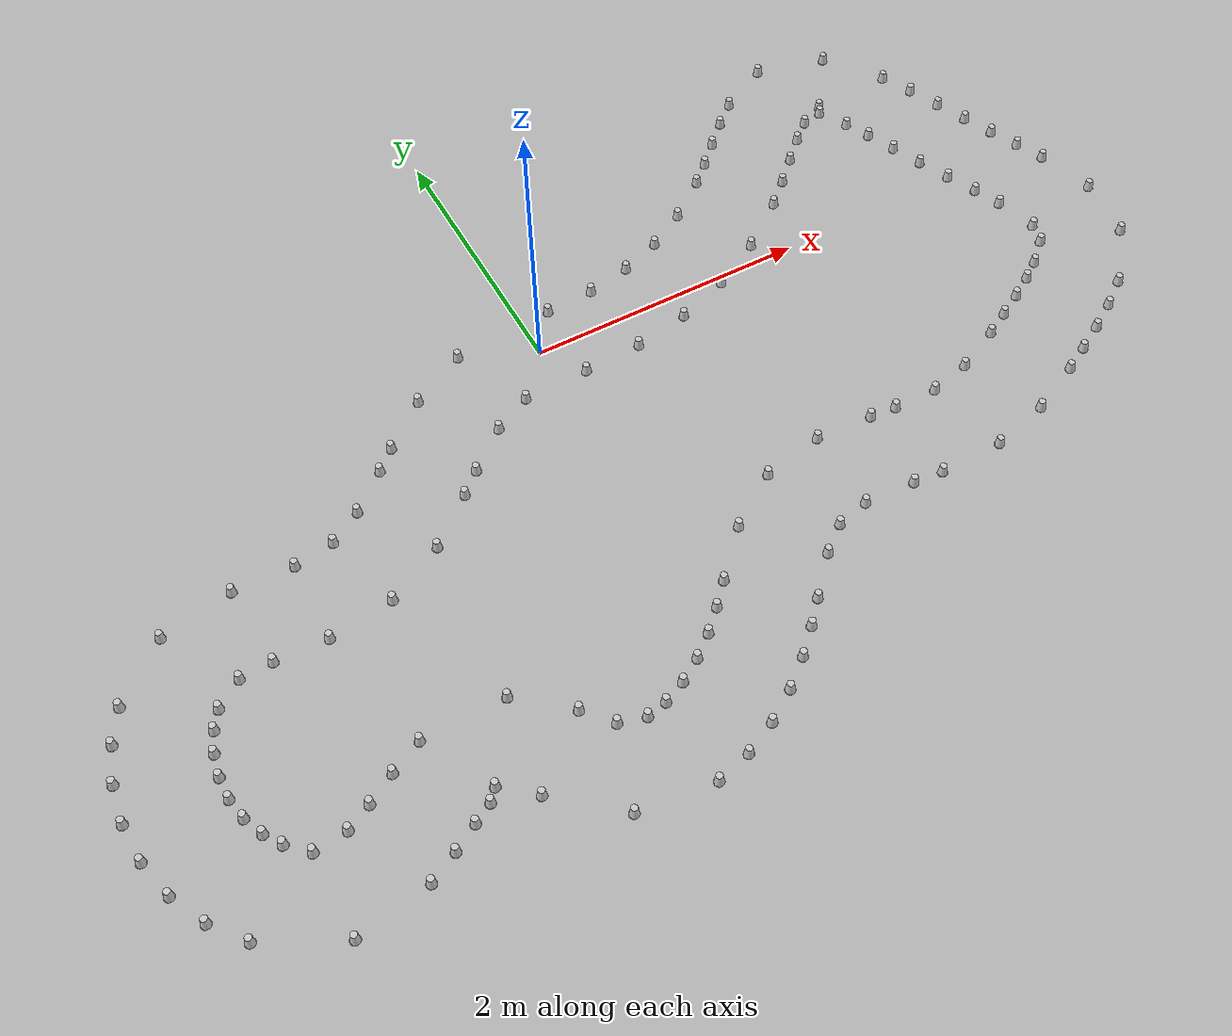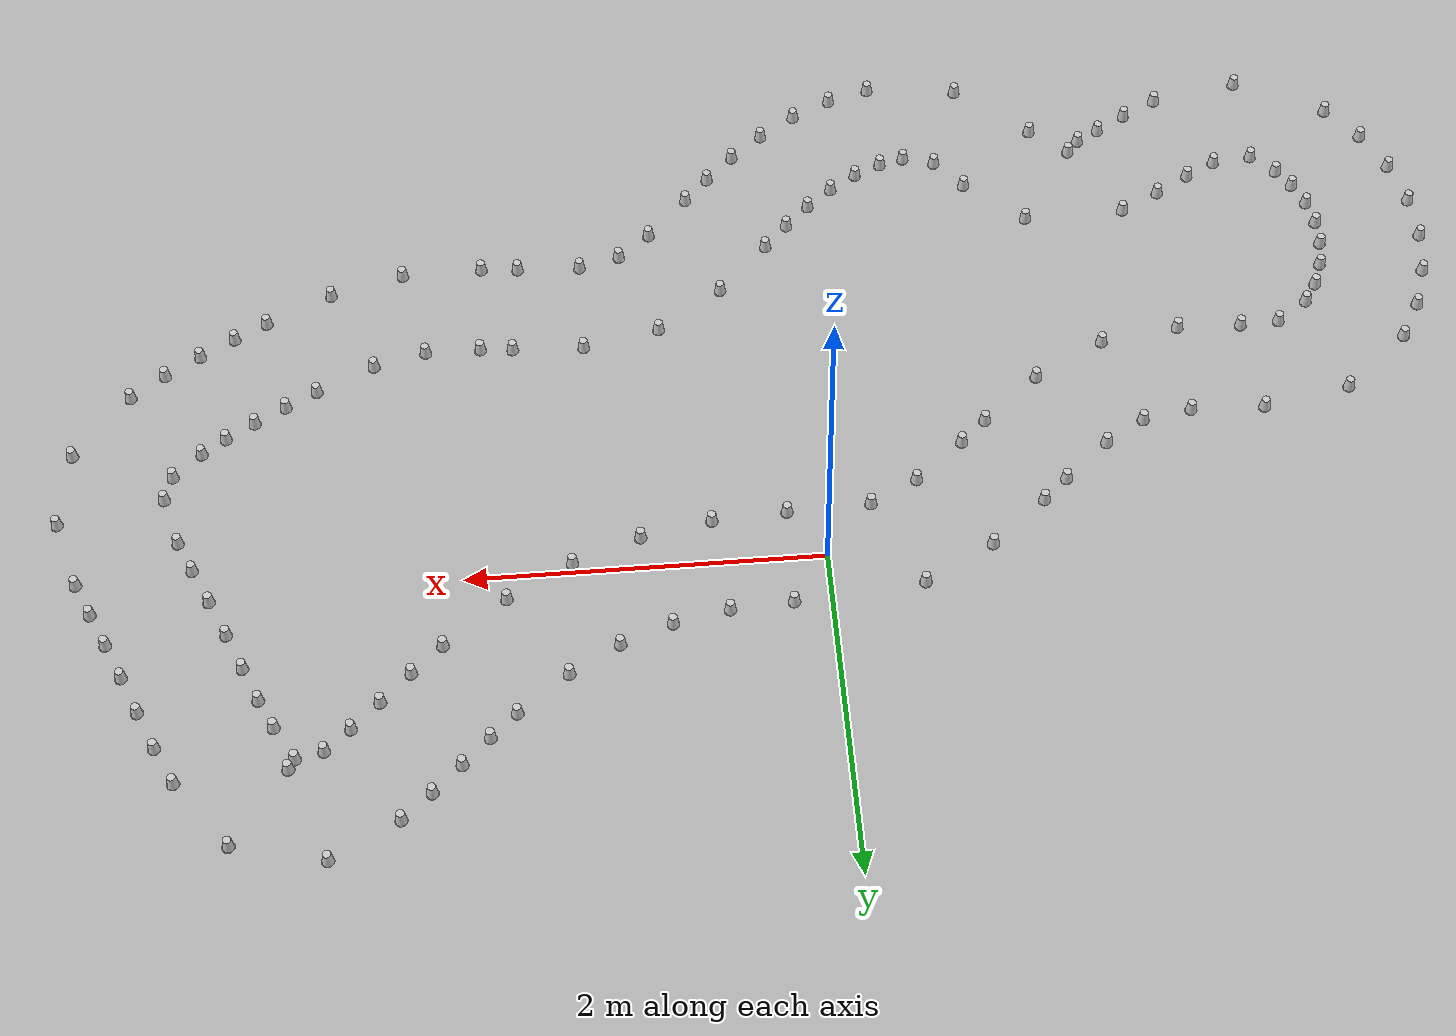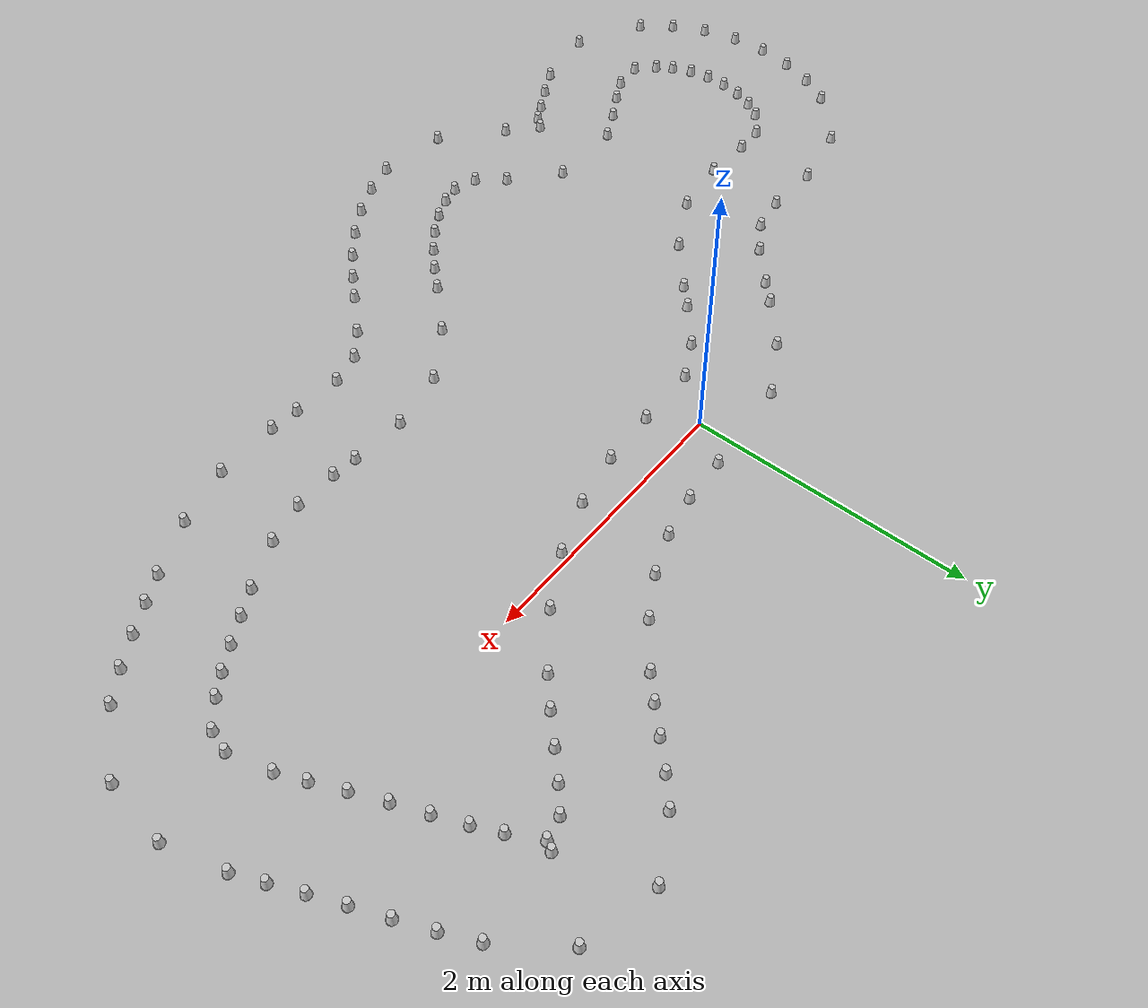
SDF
<?xml version='1.0' encoding='UTF-8'?>
<sdf version="1.4">
  <model name="some track">
    <include>
      <uri>model://cone_yellow</uri>
      <pose>0.19962206085921083 -0.3041618309189169 0 0 0 0</pose>
      <name>cone_right_0</name>
    </include>
    <include>
      <uri>model://cone_yellow</uri>
      <pose>0.6200090229429329 -0.27854277649779247 0 0 0 0</pose>
      <name>cone_right_1</name>
    </include>
    <include>
      <uri>model://cone_yellow</uri>
      <pose>1.0206518452992788 -0.1988406735972089 0 0 0 0</pose>
      <name>cone_right_2</name>
    </include>
    <include>
      <uri>model://cone_yellow</uri>
      <pose>1.404292392194105 -0.05758137551487469 0 0 0 0</pose>
      <name>cone_right_3</name>
    </include>
    <include>
      <uri>model://cone_yellow</uri>
      <pose>1.7717779220739311 0.14948636563770917 0 0 0 0</pose>
      <name>cone_right_4</name>
    </include>
    <include>
      <uri>model://cone_yellow</uri>
      <pose>2.125866095009302 0.4236454003231837 0 0 0 0</pose>
      <name>cone_right_5</name>
    </include>
    <include>
      <uri>model://cone_yellow</uri>
      <pose>2.299613305403828 0.5857872092862633 0 0 0 0</pose>
      <name>cone_right_6</name>
    </include>
    <include>
      <uri>model://cone_yellow</uri>
      <pose>2.467379689315236 0.7536571095711145 0 0 0 0</pose>
      <name>cone_right_7</name>
    </include>
    <include>
      <uri>model://cone_yellow</uri>
      <pose>2.6240885991860736 0.908438684528899 0 0 0 0</pose>
      <name>cone_right_8</name>
    </include>
    <include>
      <uri>model://cone_yellow</uri>
      <pose>2.7659605211249962 1.0338483383934316 0 0 0 0</pose>
      <name>cone_right_9</name>
    </include>
    <include>
      <uri>model://cone_yellow</uri>
      <pose>2.9532027202870665 1.1275255923315348 0 0 0 0</pose>
      <name>cone_right_10</name>
    </include>
    <include>
      <uri>model://cone_yellow</uri>
      <pose>2.91959622642824 1.0688971244918886 0 0 0 0</pose>
      <name>cone_right_11</name>
    </include>
    <include>
      <uri>model://cone_yellow</uri>
      <pose>3.0326613428856937 0.865136789924208 0 0 0 0</pose>
      <name>cone_right_12</name>
    </include>
    <include>
      <uri>model://cone_yellow</uri>
      <pose>3.115070080154632 0.6867030374291742 0 0 0 0</pose>
      <name>cone_right_13</name>
    </include>
    <include>
      <uri>model://cone_yellow</uri>
      <pose>3.201932326986126 0.4791590501613195 0 0 0 0</pose>
      <name>cone_right_14</name>
    </include>
    <include>
      <uri>model://cone_yellow</uri>
      <pose>3.2926235505993184 0.25676284770154334 0 0 0 0</pose>
      <name>cone_right_15</name>
    </include>
    <include>
      <uri>model://cone_yellow</uri>
      <pose>3.3885584741661523 0.03184577772917119 0 0 0 0</pose>
      <name>cone_right_16</name>
    </include>
    <include>
      <uri>model://cone_yellow</uri>
      <pose>3.484494814114673 -0.18213174059899434 0 0 0 0</pose>
      <name>cone_right_17</name>
    </include>
    <include>
      <uri>model://cone_yellow</uri>
      <pose>3.5664837094719246 -0.37417762074902217 0 0 0 0</pose>
      <name>cone_right_18</name>
    </include>
    <include>
      <uri>model://cone_yellow</uri>
      <pose>3.649243228693374 -0.6754676312972778 0 0 0 0</pose>
      <name>cone_right_19</name>
    </include>
    <include>
      <uri>model://cone_yellow</uri>
      <pose>3.6050656429598162 -0.8296583491311936 0 0 0 0</pose>
      <name>cone_right_20</name>
    </include>
    <include>
      <uri>model://cone_yellow</uri>
      <pose>3.447709122960843 -0.9759523471775199 0 0 0 0</pose>
      <name>cone_right_21</name>
    </include>
    <include>
      <uri>model://cone_yellow</uri>
      <pose>3.3127441245366622 -1.0722286106934011 0 0 0 0</pose>
      <name>cone_right_22</name>
    </include>
    <include>
      <uri>model://cone_yellow</uri>
      <pose>3.151896586086034 -1.171700635666032 0 0 0 0</pose>
      <name>cone_right_23</name>
    </include>
    <include>
      <uri>model://cone_yellow</uri>
      <pose>2.977451010657239 -1.2708236181692982 0 0 0 0</pose>
      <name>cone_right_24</name>
    </include>
    <include>
      <uri>model://cone_yellow</uri>
      <pose>2.80093974365166 -1.3677215907475821 0 0 0 0</pose>
      <name>cone_right_25</name>
    </include>
    <include>
      <uri>model://cone_yellow</uri>
      <pose>2.473956458625086 -1.523733351454825 0 0 0 0</pose>
      <name>cone_right_26</name>
    </include>
    <include>
      <uri>model://cone_yellow</uri>
      <pose>2.1761093899109754 -1.6015142822846629 0 0 0 0</pose>
      <name>cone_right_27</name>
    </include>
    <include>
      <uri>model://cone_yellow</uri>
      <pose>1.8604995631559766 -1.5998649273433292 0 0 0 0</pose>
      <name>cone_right_28</name>
    </include>
    <include>
      <uri>model://cone_yellow</uri>
      <pose>1.6741704545196308 -1.5837453469236658 0 0 0 0</pose>
      <name>cone_right_29</name>
    </include>
    <include>
      <uri>model://cone_yellow</uri>
      <pose>1.265228708679485 -1.565868883334609 0 0 0 0</pose>
      <name>cone_right_30</name>
    </include>
    <include>
      <uri>model://cone_yellow</uri>
      <pose>0.825015792186231 -1.66188428336761 0 0 0 0</pose>
      <name>cone_right_31</name>
    </include>
    <include>
      <uri>model://cone_yellow</uri>
      <pose>0.4481251583171977 -1.9246928211266574 0 0 0 0</pose>
      <name>cone_right_32</name>
    </include>
    <include>
      <uri>model://cone_yellow</uri>
      <pose>0.1563770316512327 -2.236118173638613 0 0 0 0</pose>
      <name>cone_right_33</name>
    </include>
    <include>
      <uri>model://cone_yellow</uri>
      <pose>0.01882752071973351 -2.3870262368217747 0 0 0 0</pose>
      <name>cone_right_34</name>
    </include>
    <include>
      <uri>model://cone_yellow</uri>
      <pose>-0.1222097942212724 -2.5265050943960197 0 0 0 0</pose>
      <name>cone_right_35</name>
    </include>
    <include>
      <uri>model://cone_yellow</uri>
      <pose>-0.2714787259558749 -2.6492600757413785 0 0 0 0</pose>
      <name>cone_right_36</name>
    </include>
    <include>
      <uri>model://cone_yellow</uri>
      <pose>-0.42934755258622814 -2.7509336191828746 0 0 0 0</pose>
      <name>cone_right_37</name>
    </include>
    <include>
      <uri>model://cone_yellow</uri>
      <pose>-0.5872348034616063 -2.8234261508445146 0 0 0 0</pose>
      <name>cone_right_38</name>
    </include>
    <include>
      <uri>model://cone_yellow</uri>
      <pose>-0.7305657049840814 -2.857485580148417 0 0 0 0</pose>
      <name>cone_right_39</name>
    </include>
    <include>
      <uri>model://cone_yellow</uri>
      <pose>-0.9132384652760475 -2.807593690943424 0 0 0 0</pose>
      <name>cone_right_40</name>
    </include>
    <include>
      <uri>model://cone_yellow</uri>
      <pose>-1.0710930085902566 -2.616597340263576 0 0 0 0</pose>
      <name>cone_right_41</name>
    </include>
    <include>
      <uri>model://cone_yellow</uri>
      <pose>-1.4067272672509743 -2.3269832525353964 0 0 0 0</pose>
      <name>cone_right_42</name>
    </include>
    <include>
      <uri>model://cone_yellow</uri>
      <pose>-1.9933716305857154 -2.3408570770696406 0 0 0 0</pose>
      <name>cone_right_43</name>
    </include>
    <include>
      <uri>model://cone_yellow</uri>
      <pose>-2.22199012190233 -2.458622230816267 0 0 0 0</pose>
      <name>cone_right_44</name>
    </include>
    <include>
      <uri>model://cone_yellow</uri>
      <pose>-2.421279251834865 -2.577079736622715 0 0 0 0</pose>
      <name>cone_right_45</name>
    </include>
    <include>
      <uri>model://cone_yellow</uri>
      <pose>-2.5976926739517814 -2.6697409680289415 0 0 0 0</pose>
      <name>cone_right_46</name>
    </include>
    <include>
      <uri>model://cone_yellow</uri>
      <pose>-2.8285873120383895 -2.6974644688588048 0 0 0 0</pose>
      <name>cone_right_47</name>
    </include>
    <include>
      <uri>model://cone_yellow</uri>
      <pose>-2.9602386706120285 -2.569165151742825 0 0 0 0</pose>
      <name>cone_right_48</name>
    </include>
    <include>
      <uri>model://cone_yellow</uri>
      <pose>-3.036192227682637 -2.4507075293365057 0 0 0 0</pose>
      <name>cone_right_49</name>
    </include>
    <include>
      <uri>model://cone_yellow</uri>
      <pose>-3.094690088021542 -2.3046496447589897 0 0 0 0</pose>
      <name>cone_right_50</name>
    </include>
    <include>
      <uri>model://cone_yellow</uri>
      <pose>-3.12288395896249 -2.1475627161090998 0 0 0 0</pose>
      <name>cone_right_51</name>
    </include>
    <include>
      <uri>model://cone_yellow</uri>
      <pose>-3.1206099568197705 -1.9861369180172566 0 0 0 0</pose>
      <name>cone_right_52</name>
    </include>
    <include>
      <uri>model://cone_yellow</uri>
      <pose>-3.0898115986443995 -1.826182903191358 0 0 0 0</pose>
      <name>cone_right_53</name>
    </include>
    <include>
      <uri>model://cone_yellow</uri>
      <pose>-3.0328466157937344 -1.679039607722306 0 0 0 0</pose>
      <name>cone_right_54</name>
    </include>
    <include>
      <uri>model://cone_yellow</uri>
      <pose>-2.9547086901494453 -1.5564997714213364 0 0 0 0</pose>
      <name>cone_right_55</name>
    </include>
    <include>
      <uri>model://cone_yellow</uri>
      <pose>-2.769377282430569 -1.4232101473483936 0 0 0 0</pose>
      <name>cone_right_56</name>
    </include>
    <include>
      <uri>model://cone_yellow</uri>
      <pose>-2.543809231242034 -1.4097226109358214 0 0 0 0</pose>
      <name>cone_right_57</name>
    </include>
    <include>
      <uri>model://cone_yellow</uri>
      <pose>-2.1755961976269544 -1.423413972976139 0 0 0 0</pose>
      <name>cone_right_58</name>
    </include>
    <include>
      <uri>model://cone_yellow</uri>
      <pose>-1.7212704380437926 -1.354918258626261 0 0 0 0</pose>
      <name>cone_right_59</name>
    </include>
    <include>
      <uri>model://cone_yellow</uri>
      <pose>-1.3080357896533428 -1.1292343596531769 0 0 0 0</pose>
      <name>cone_right_60</name>
    </include>
    <include>
      <uri>model://cone_yellow</uri>
      <pose>-0.9764288245516533 -0.8443531879658277 0 0 0 0</pose>
      <name>cone_right_61</name>
    </include>
    <include>
      <uri>model://cone_yellow</uri>
      <pose>-0.8272206069408271 -0.7039510204067285 0 0 0 0</pose>
      <name>cone_right_62</name>
    </include>
    <include>
      <uri>model://cone_yellow</uri>
      <pose>-0.543617809400371 -0.4644914238718153 0 0 0 0</pose>
      <name>cone_right_63</name>
    </include>
    <include>
      <uri>model://cone_yellow</uri>
      <pose>-0.27134453687605875 -0.32196464870410335 0 0 0 0</pose>
      <name>cone_right_64</name>
    </include>
    <include>
      <uri>model://cone_blue</uri>
      <pose>0.2119385571326803 0.29571174236094144 0 0 0 0</pose>
      <name>cone_left_0</name>
    </include>
    <include>
      <uri>model://cone_blue</uri>
      <pose>0.5635531791637727 0.31879526657596247 0 0 0 0</pose>
      <name>cone_left_1</name>
    </include>
    <include>
      <uri>model://cone_blue</uri>
      <pose>0.8793764025764245 0.3842898857833311 0 0 0 0</pose>
      <name>cone_left_2</name>
    </include>
    <include>
      <uri>model://cone_blue</uri>
      <pose>1.171815160080151 0.4955500162435707 0 0 0 0</pose>
      <name>cone_left_3</name>
    </include>
    <include>
      <uri>model://cone_blue</uri>
      <pose>1.455170990203801 0.659152973030996 0 0 0 0</pose>
      <name>cone_left_4</name>
    </include>
    <include>
      <uri>model://cone_blue</uri>
      <pose>1.7418350298522016 0.8846444686457813 0 0 0 0</pose>
      <name>cone_left_5</name>
    </include>
    <include>
      <uri>model://cone_blue</uri>
      <pose>1.8893076703586218 1.0235648764303857 0 0 0 0</pose>
      <name>cone_left_6</name>
    </include>
    <include>
      <uri>model://cone_blue</uri>
      <pose>2.0426859710635616 1.1774910931986278 0 0 0 0</pose>
      <name>cone_left_7</name>
    </include>
    <include>
      <uri>model://cone_blue</uri>
      <pose>2.2024427918345415 1.3353049553244192 0 0 0 0</pose>
      <name>cone_left_8</name>
    </include>
    <include>
      <uri>model://cone_blue</uri>
      <pose>2.3675766690080007 1.4825022209938428 0 0 0 0</pose>
      <name>cone_left_9</name>
    </include>
    <include>
      <uri>model://cone_blue</uri>
      <pose>2.746842363262733 1.6909219031543778 0 0 0 0</pose>
      <name>cone_left_10</name>
    </include>
    <include>
      <uri>model://cone_blue</uri>
      <pose>3.2589279987083346 1.5637243148535842 0 0 0 0</pose>
      <name>cone_left_11</name>
    </include>
    <include>
      <uri>model://cone_blue</uri>
      <pose>3.552888525136892 1.1640743734545804 0 0 0 0</pose>
      <name>cone_left_12</name>
    </include>
    <include>
      <uri>model://cone_blue</uri>
      <pose>3.658434378765858 0.9411735445507864 0 0 0 0</pose>
      <name>cone_left_13</name>
    </include>
    <include>
      <uri>model://cone_blue</uri>
      <pose>3.755158856883274 0.7114097909953587 0 0 0 0</pose>
      <name>cone_left_14</name>
    </include>
    <include>
      <uri>model://cone_blue</uri>
      <pose>3.848189708080809 0.4833599453467945 0 0 0 0</pose>
      <name>cone_left_15</name>
    </include>
    <include>
      <uri>model://cone_blue</uri>
      <pose>3.940414427687979 0.2673346449023687 0 0 0 0</pose>
      <name>cone_left_16</name>
    </include>
    <include>
      <uri>model://cone_blue</uri>
      <pose>4.031932736817092 0.06345270676536943 0 0 0 0</pose>
      <name>cone_left_17</name>
    </include>
    <include>
      <uri>model://cone_blue</uri>
      <pose>4.118244818814677 -0.1384666150304629 0 0 0 0</pose>
      <name>cone_left_18</name>
    </include>
    <include>
      <uri>model://cone_blue</uri>
      <pose>4.2368242535318545 -0.5540240672448311 0 0 0 0</pose>
      <name>cone_left_19</name>
    </include>
    <include>
      <uri>model://cone_blue</uri>
      <pose>4.173081461792759 -1.0229406027282089 0 0 0 0</pose>
      <name>cone_left_20</name>
    </include>
    <include>
      <uri>model://cone_blue</uri>
      <pose>3.85962542199581 -1.4122148399377104 0 0 0 0</pose>
      <name>cone_left_21</name>
    </include>
    <include>
      <uri>model://cone_blue</uri>
      <pose>3.6678628450803563 -1.5558510815520346 0 0 0 0</pose>
      <name>cone_left_22</name>
    </include>
    <include>
      <uri>model://cone_blue</uri>
      <pose>3.4697547560689554 -1.6805878370919556 0 0 0 0</pose>
      <name>cone_left_23</name>
    </include>
    <include>
      <uri>model://cone_blue</uri>
      <pose>3.274506260542366 -1.7921279232691936 0 0 0 0</pose>
      <name>cone_left_24</name>
    </include>
    <include>
      <uri>model://cone_blue</uri>
      <pose>3.0897684416768127 -1.8936284106283428 0 0 0 0</pose>
      <name>cone_left_25</name>
    </include>
    <include>
      <uri>model://cone_blue</uri>
      <pose>2.716661776804831 -2.07245379806427 0 0 0 0</pose>
      <name>cone_left_26</name>
    </include>
    <include>
      <uri>model://cone_blue</uri>
      <pose>2.2976563774270278 -2.1890739216624646 0 0 0 0</pose>
      <name>cone_left_27</name>
    </include>
    <include>
      <uri>model://cone_blue</uri>
      <pose>1.8366134567505863 -2.1993892837466285 0 0 0 0</pose>
      <name>cone_left_28</name>
    </include>
    <include>
      <uri>model://cone_blue</uri>
      <pose>1.623421606581663 -2.1815952899971505 0 0 0 0</pose>
      <name>cone_left_29</name>
    </include>
    <include>
      <uri>model://cone_blue</uri>
      <pose>1.2593300398399454 -2.1658398873889064 0 0 0 0</pose>
      <name>cone_left_30</name>
    </include>
    <include>
      <uri>model://cone_blue</uri>
      <pose>1.0247558813416726 -2.227661533514853 0 0 0 0</pose>
      <name>cone_left_31</name>
    </include>
    <include>
      <uri>model://cone_blue</uri>
      <pose>0.839767548045568 -2.3792434107950147 0 0 0 0</pose>
      <name>cone_left_32</name>
    </include>
    <include>
      <uri>model://cone_blue</uri>
      <pose>0.6033623641196662 -2.6363732330171095 0 0 0 0</pose>
      <name>cone_left_33</name>
    </include>
    <include>
      <uri>model://cone_blue</uri>
      <pose>0.4622869442874933 -2.791184299526146 0 0 0 0</pose>
      <name>cone_left_34</name>
    </include>
    <include>
      <uri>model://cone_blue</uri>
      <pose>0.3004962665888844 -2.952321470495342 0 0 0 0</pose>
      <name>cone_left_35</name>
    </include>
    <include>
      <uri>model://cone_blue</uri>
      <pose>0.11237520546319257 -3.1104066460789728 0 0 0 0</pose>
      <name>cone_left_36</name>
    </include>
    <include>
      <uri>model://cone_blue</uri>
      <pose>-0.09943858362701075 -3.2520923487289792 0 0 0 0</pose>
      <name>cone_left_37</name>
    </include>
    <include>
      <uri>model://cone_blue</uri>
      <pose>-0.32823543779568554 -3.364646372736353 0 0 0 0</pose>
      <name>cone_left_38</name>
    </include>
    <include>
      <uri>model://cone_blue</uri>
      <pose>-0.572701065462406 -3.4363454557562285 0 0 0 0</pose>
      <name>cone_left_39</name>
    </include>
    <include>
      <uri>model://cone_blue</uri>
      <pose>-1.1054023752708437 -3.375988827882079 0 0 0 0</pose>
      <name>cone_left_40</name>
    </include>
    <include>
      <uri>model://cone_blue</uri>
      <pose>-1.5211045363714362 -3.0134469652653495 0 0 0 0</pose>
      <name>cone_left_41</name>
    </include>
    <include>
      <uri>model://cone_blue</uri>
      <pose>-1.7344850687489024 -2.8295514802987967 0 0 0 0</pose>
      <name>cone_left_42</name>
    </include>
    <include>
      <uri>model://cone_blue</uri>
      <pose>-1.8040764275635226 -2.910214017936077 0 0 0 0</pose>
      <name>cone_left_43</name>
    </include>
    <include>
      <uri>model://cone_blue</uri>
      <pose>-1.9381025868812147 -2.9872126842484445 0 0 0 0</pose>
      <name>cone_left_44</name>
    </include>
    <include>
      <uri>model://cone_blue</uri>
      <pose>-2.1140408486425004 -3.092448113227068 0 0 0 0</pose>
      <name>cone_left_45</name>
    </include>
    <include>
      <uri>model://cone_blue</uri>
      <pose>-2.3176112202937458 -3.200357947889935 0 0 0 0</pose>
      <name>cone_left_46</name>
    </include>
    <include>
      <uri>model://cone_blue</uri>
      <pose>-2.8295202432964794 -3.297463743557756 0 0 0 0</pose>
      <name>cone_left_47</name>
    </include>
    <include>
      <uri>model://cone_blue</uri>
      <pose>-3.3459261545940233 -3.0287792993706346 0 0 0 0</pose>
      <name>cone_left_48</name>
    </include>
    <include>
      <uri>model://cone_blue</uri>
      <pose>-3.5203898814690504 -2.805041597791308 0 0 0 0</pose>
      <name>cone_left_49</name>
    </include>
    <include>
      <uri>model://cone_blue</uri>
      <pose>-3.6419212284973224 -2.550694516466523 0 0 0 0</pose>
      <name>cone_left_50</name>
    </include>
    <include>
      <uri>model://cone_blue</uri>
      <pose>-3.7087972775251346 -2.2768127959191693 0 0 0 0</pose>
      <name>cone_left_51</name>
    </include>
    <include>
      <uri>model://cone_blue</uri>
      <pose>-3.7204725846292575 -1.9989754443149619 0 0 0 0</pose>
      <name>cone_left_52</name>
    </include>
    <include>
      <uri>model://cone_blue</uri>
      <pose>-3.6821483813527878 -1.7305945364793152 0 0 0 0</pose>
      <name>cone_left_53</name>
    </include>
    <include>
      <uri>model://cone_blue</uri>
      <pose>-3.5987013348758765 -1.4795190902498654 0 0 0 0</pose>
      <name>cone_left_54</name>
    </include>
    <include>
      <uri>model://cone_blue</uri>
      <pose>-3.4723721618543513 -1.2531443197438967 0 0 0 0</pose>
      <name>cone_left_55</name>
    </include>
    <include>
      <uri>model://cone_blue</uri>
      <pose>-3.0855417583769054 -0.9132689505917693 0 0 0 0</pose>
      <name>cone_left_56</name>
    </include>
    <include>
      <uri>model://cone_blue</uri>
      <pose>-2.578216179278 -0.8107099550370913 0 0 0 0</pose>
      <name>cone_left_57</name>
    </include>
    <include>
      <uri>model://cone_blue</uri>
      <pose>-2.1560419483578537 -0.8237326981846695 0 0 0 0</pose>
      <name>cone_left_58</name>
    </include>
    <include>
      <uri>model://cone_blue</uri>
      <pose>-1.8731780108381815 -0.774466633313938 0 0 0 0</pose>
      <name>cone_left_59</name>
    </include>
    <include>
      <uri>model://cone_blue</uri>
      <pose>-1.6426733297644682 -0.6312205880078792 0 0 0 0</pose>
      <name>cone_left_60</name>
    </include>
    <include>
      <uri>model://cone_blue</uri>
      <pose>-1.3814050518752763 -0.40164080356402976 0 0 0 0</pose>
      <name>cone_left_61</name>
    </include>
    <include>
      <uri>model://cone_blue</uri>
      <pose>-1.2384590915234224 -0.26704953402998177 0 0 0 0</pose>
      <name>cone_left_62</name>
    </include>
    <include>
      <uri>model://cone_blue</uri>
      <pose>-0.9167392424146175 0.0053813208425328996 0 0 0 0</pose>
      <name>cone_left_63</name>
    </include>
    <include>
      <uri>model://cone_blue</uri>
      <pose>-0.516229243605214 0.22578664559849856 0 0 0 0</pose>
      <name>cone_left_64</name>
    </include>

  </model>
</sdf>

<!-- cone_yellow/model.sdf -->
<sdf version='1.4'>
  <model name="cone_yellow">
    <link name="link">
    <collision name="collision"><geometry><box><size> 0.05 0.05 0.01</size>
             </box></geometry></collision>
      <visual name="visual">
        <geometry>
          <mesh>
            <uri>model://cup.dae</uri>
            <scale>1 1 1</scale>
          </mesh>
        </geometry>
        <material>
            <script>
              <uri>model://cone_yellow/materials/scripts</uri>
              <uri>model://cone_yellow/materials/textures</uri>
              <name>cone_yellow/Image</name>
            </script>
        </material>
      </visual>
    </link>
  </model>
</sdf>

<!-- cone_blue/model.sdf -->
<sdf version='1.4'>
  <model name="cone_blue">
    <link name="link">
    <collision name="collision"><geometry><box><size> 0.05 0.05 0.01</size>
             </box></geometry></collision>
      <visual name="visual">
        <geometry>
          <mesh>
            <uri>model://cup.dae</uri>
            <scale>1 1 1</scale>
          </mesh>
        </geometry>
        <material>
            <script>
              <uri>model://cone_blue/materials/scripts</uri>
              <uri>model://cone_blue/materials/textures</uri>
              <name>cone_blue/Image</name>
            </script>
        </material>
      </visual>
    </link>
  </model>
</sdf>
